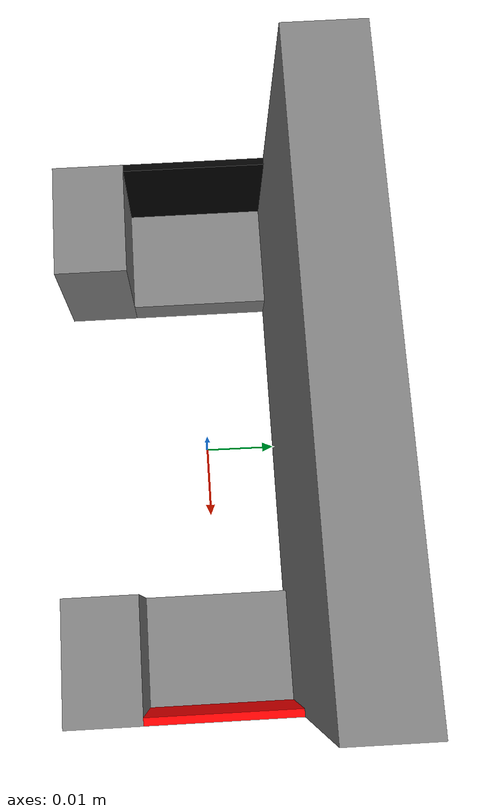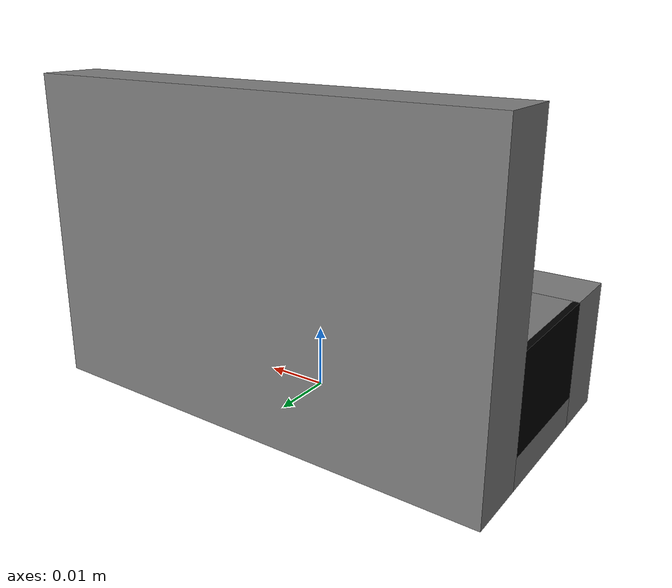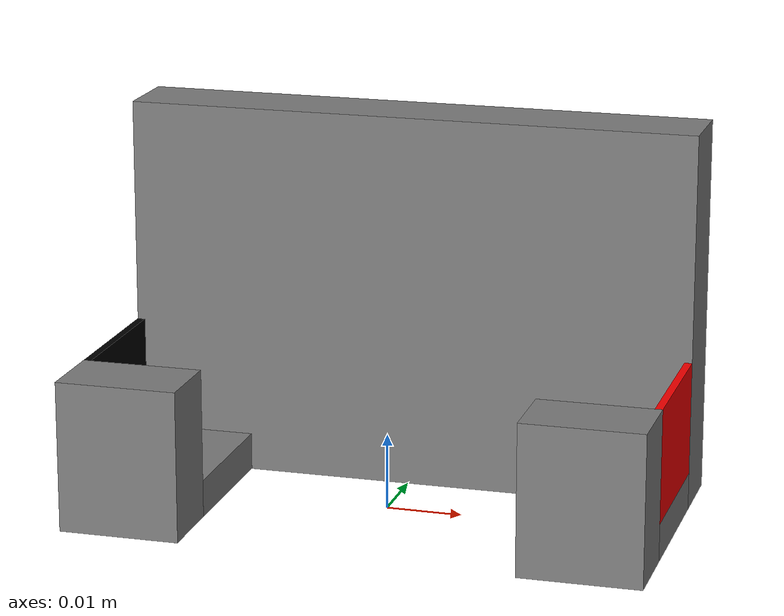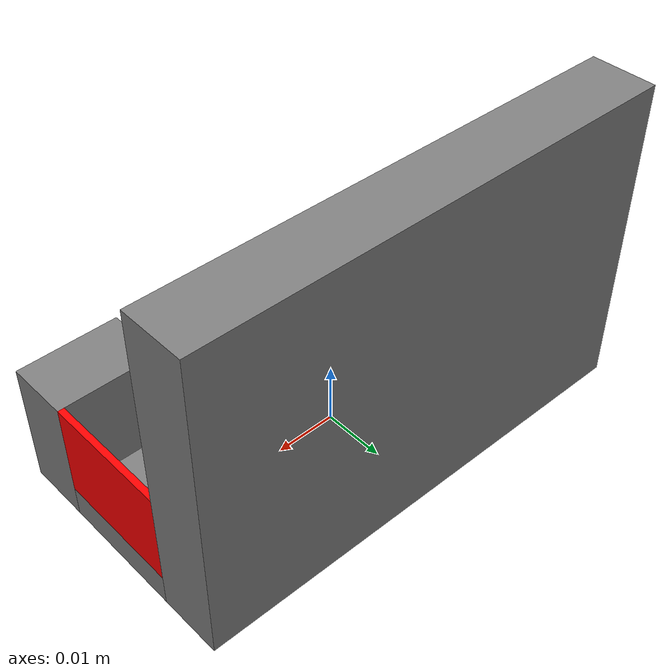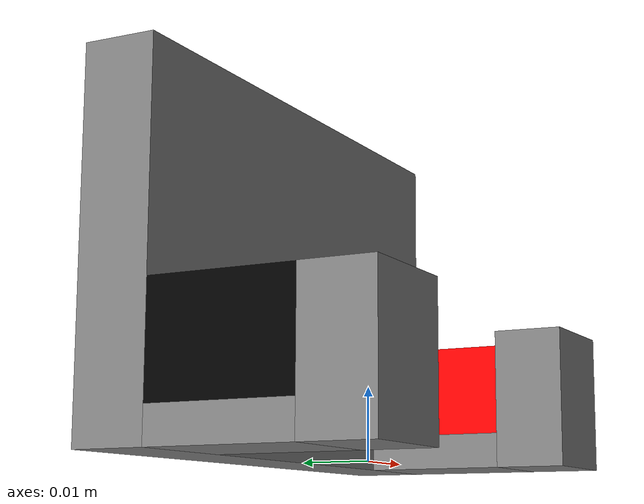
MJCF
<mujoco model="battery_aa_tray_charger">
    <worldbody>
        <body name="charger_AA_tray" pos="0 0 0">

            <!-- Back wall -->
            <geom name="back_wall" type="box" pos="0 0.015 0.025" size="0.038 0.005 0.025" rgba="0.5 0.5 0.5 1" mass="0.5" friction="1 0.005 0.0001" condim="4"/>

            <!-- Bottom right -->
            <geom name="bottom_right" type="box" pos="0.03 0 0.0025" size="0.008 0.01 0.0025" rgba="0.5 0.5 0.5 1" mass="0.5" friction="1 0.005 0.0001" condim="4"/>

            <!-- Right wall -->
            <geom name="right_wall" type="box" pos="0.0375 0 0.0125" size="0.0005 0.01 0.0075" rgba="1 0 0 1" mass="0.5" friction="1 0.005 0.0001" condim="4"/>

            <!-- Right hook -->
            <geom name="right_hook" type="box" pos="0.03 -0.015 0.01" size="0.008 0.005 0.01" rgba="0.5 0.5 0.5 1" mass="0.5" friction="1 0.005 0.0001" condim="4"/>

            <!-- Bottom left -->
            <geom name="bottom_left" type="box" pos="-0.03 0 0.0025" size="0.008 0.01 0.0025" rgba="0.5 0.5 0.5 1" mass="0.5" friction="1 0.005 0.0001" condim="4"/>

            <!-- Left wall -->
            <geom name="left_wall" type="box" pos="-0.0375 0 0.0125" size="0.0005 0.01 0.0075" rgba="0 0 0 1" mass="0.5" friction="1 0.005 0.0001" condim="4"/>

            <!-- Left hook -->
            <geom name="left_hook" type="box" pos="-0.03 -0.015 0.01" size="0.008 0.005 0.01" rgba="0.5 0.5 0.5 1" mass="0.5" friction="1 0.005 0.0001" condim="4"/>

            <!-- Make it one solid object -->
            <joint name="battery_joint" type="free"/>
        </body>
    </worldbody>
</mujoco>
